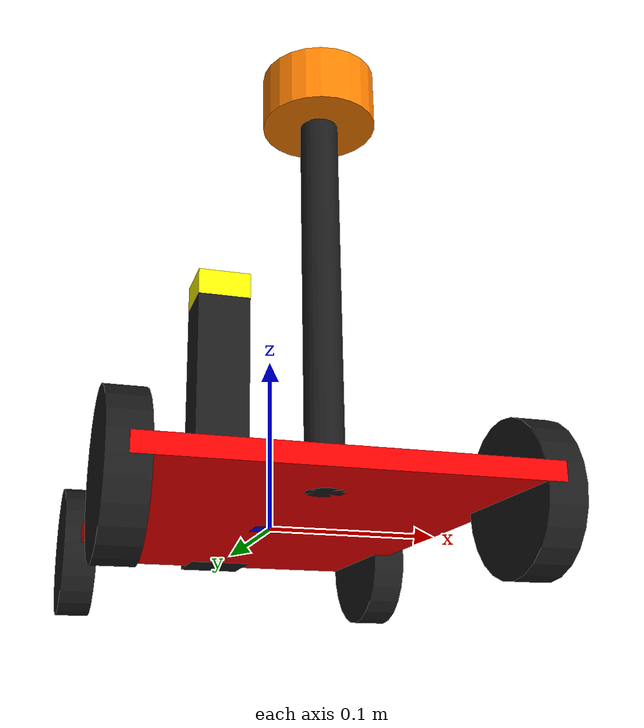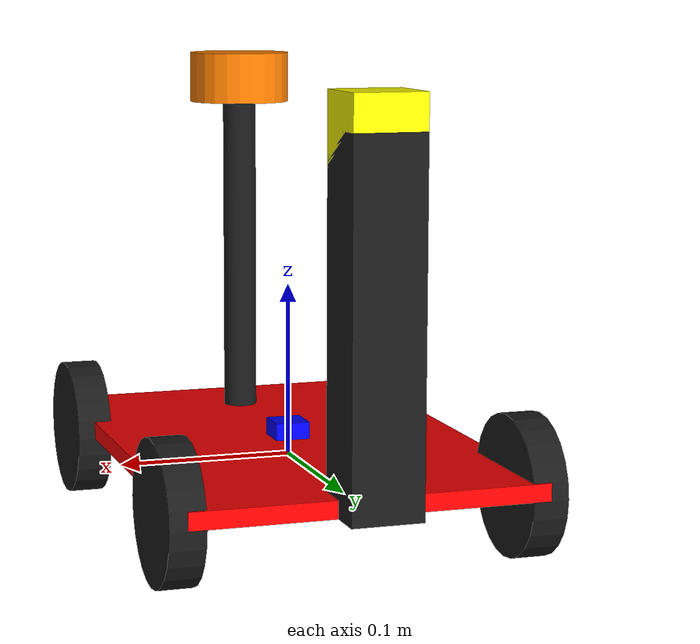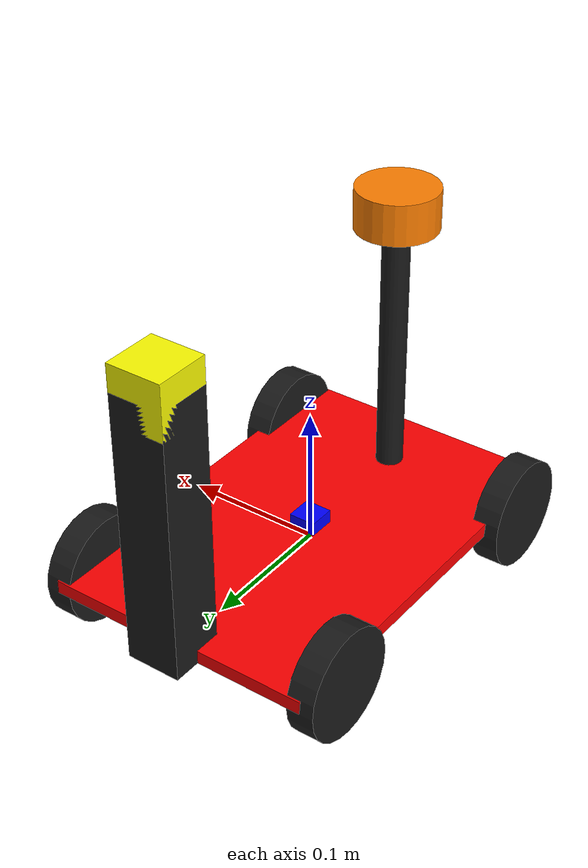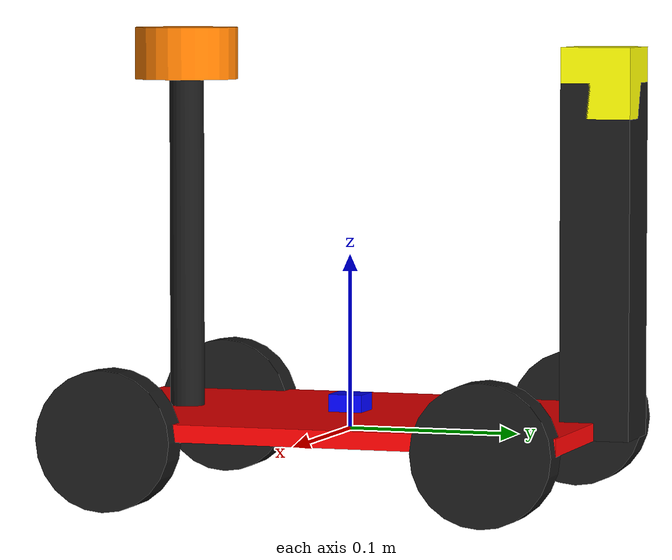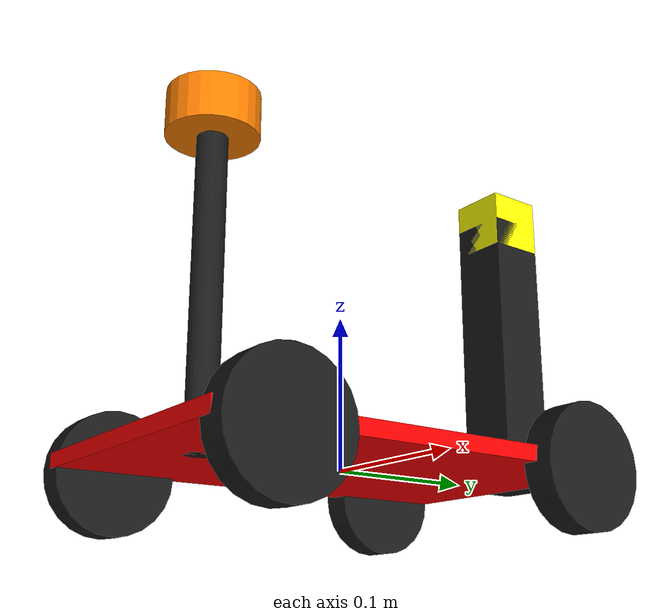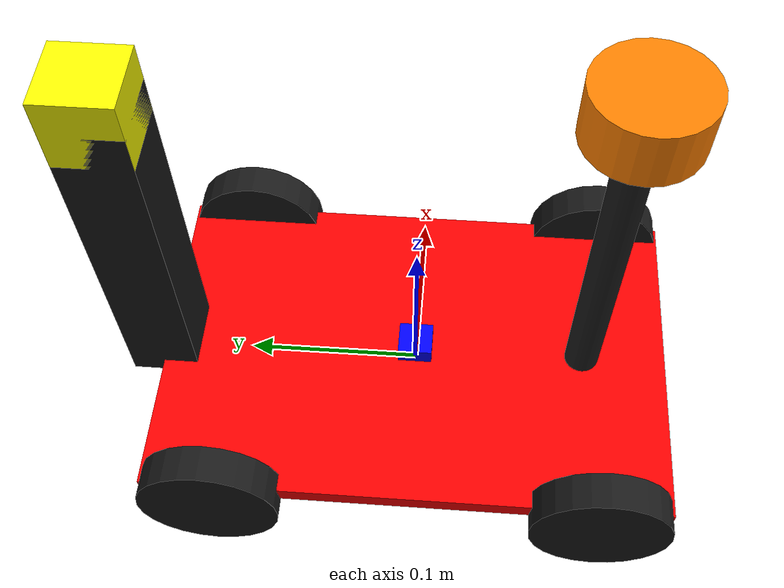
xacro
<?xml version="1.0"?>

<robot xmlns:xacro="http://www.ros.org/wiki/xacro" name="shakti">
	 <xacro:include filename="include.xacro" />

	 <link name="base_l">
		<visual>
			<origin xyz="0 0 0.005" rpy="0 0 0"/>
			<geometry>
				<box size="0.2 0.3 0.01"/>
			</geometry>
			<material name="red">
				<color rgba="1.0 0.0 0.0 1.0"/>
			</material>
		</visual>
		<collision>
			<origin xyz="0 0 0.005" rpy="0 0 0"/>
			<geometry>
				<box size="0.2 0.3 0.01"/>
			</geometry>
		</collision>
		<xacro:inertial_box mass="1.0" x="0.2" y="0.3" z="0.01">
            		<origin xyz="0 0 0.005" rpy="0 0 0"/>
        	</xacro:inertial_box>

	</link>

	<joint name="base_to_frontleft" type="continuous">
		<parent link="base_l"/>
		<child link="front_left_wheel"/>
		<origin xyz="-0.1 0.11 0" rpy="0 0 0"/>
		<axis xyz="1 0 0"/>
	</joint>

	<link name="front_left_wheel">
		<visual>
			<origin xyz="0 0 0" rpy="0 1.5708 0"/>
			<geometry>
				<cylinder radius="0.04" length="0.02"/>
			</geometry>
			<material name="black">
				<color rgba="0.1 0.1 0.1 1"/>
			</material>
		</visual>

		<collision>
			<origin xyz="0 0 0" rpy="0 1.5708 0"/>
			<geometry>
				<cylinder radius="0.04" length="0.02"/>
			</geometry>
		</collision>

		<xacro:inertial_cylinder mass="0.2" radius="0.04" length="0.02">
			<origin xyz="0 0 0" rpy="0 1.5708 0"/>
		</xacro:inertial_cylinder>
	</link>

	<joint name="base_to_frontright" type="continuous">
		<origin xyz="0.1 0.11 0" rpy="0 0 0" />
		<parent link="base_l"/>
		<child link="front_right_wheel" />
		<axis xyz="1 0 0"/>
	</joint>

	<link name="front_right_wheel">
		<visual>
			<origin xyz="0 0 0" rpy="0 1.5708 0"/>
			<geometry>
				<cylinder radius="0.04" length="0.02"/>
			</geometry>
			<material name="black">
				<color rgba="0.1 0.1 0.1 1"/>
			</material>
		</visual>

		<collision>
			<origin xyz="0 0 0" rpy="0 1.5708 0"/>
			<geometry>
				<cylinder radius="0.04" length="0.02"/>
			</geometry>
		</collision>

		<xacro:inertial_cylinder mass="0.2" radius="0.04" length="0.02">
			<origin xyz="0 0 0" rpy="0 1.5708 0"/>
		</xacro:inertial_cylinder>
	</link>

	<joint name="base_to_backleft" type="continuous">
			<origin xyz="-0.1 -0.11 0" rpy="0 0 0"/>
			<parent link="base_l"/>
			<child link="back_left_wheel"/>
			<axis xyz="1 0 0"/>
	</joint>

	<link name="back_left_wheel">
		<visual>
			<origin xyz="0 0 0" rpy="0 1.5708 0"/>
			<geometry>
				<cylinder radius="0.04" length="0.02"/>
			</geometry>
			<material name="black">
				<color rgba="0.1 0.1 0.1 1"/>
			</material>
		</visual>

		<collision>
			<origin xyz="0 0 0" rpy="0 1.5708 0"/>
			<geometry>
				<cylinder radius="0.04" length="0.02"/>
			</geometry>
		</collision>

		<xacro:inertial_cylinder mass="0.2" radius="0.04" length="0.02">
			<origin xyz="0 0 0" rpy="0 1.5708 0"/>
		</xacro:inertial_cylinder>
	</link>

	<joint name="base_to_backright" type="continuous">
		<origin xyz="0.1 -0.11 0" rpy="0 0 0" />
		<parent link="base_l"/>
		<child link="back_right_wheel" />
		<axis xyz="1 0 0"/>
	</joint>

	<link name="back_right_wheel">
		<visual>
			<origin xyz="0 0 0" rpy="0 1.5708 0"/>
			<geometry>
				<cylinder radius="0.04" length="0.02"/>
			</geometry>
			<material name="black">
				<color rgba="0.1 0.1 0.1 1"/>
			</material>
		</visual>

		<collision>
			<origin xyz="0 0 0" rpy="0 1.5708 0"/>
			<geometry>
				<cylinder radius="0.04" length="0.02"/>
			</geometry>
		</collision>

		<xacro:inertial_cylinder mass="0.2" radius="0.04" length="0.02">
			<origin xyz="0 0 0" rpy="0 1.5708 0"/>
		</xacro:inertial_cylinder>
	</link>

	<joint name="base_to_arm" type="revolute">
		<origin xyz="0 0.15 0" rpy="0 0 0"/>
		<parent link="base_l"/>
		<child link="arm"/>
		<axis xyz="1 0 0"/>
		<limit lower="-1.5708" upper="0" effort="10" velocity="1.0"/>
	</joint>

	<link name="arm">
		<visual>
			<origin xyz="0 0 0.1" rpy="0 0 0"/>
			<geometry>
				<box size="0.04 0.04 0.2"/>
			</geometry>
			<material name="black">
				<color rgba="0.1 0.1 0.1 1"/>
			</material>
		</visual>
		<collision>
			<origin xyz="0 0 0.1" rpy="0 0 0"/>
			<geometry>
				<box size="0.04 0.04 0.2"/>
			</geometry>
		</collision>
		<xacro:inertial_box mass="0.08" x="0.04" y="0.04" z="0.2">
            		<origin xyz="0 0 0.1" rpy="0 0 0"/>
        	</xacro:inertial_box>
        </link>

        <joint name="cam_joint" type="fixed">
        	<origin xyz="0 0 0.2" rpy="0 0 0"/>
        	<parent link="arm"/>
        	<child link="camera_link"/>
        </joint>

        <link name="camera_link">
        	<visual>
        		<origin xyz="0 0 0" rpy="0 0 0"/>
        		<geometry>
        			<box size="0.04 0.04 0.04"/>
        		</geometry>
        		<material name="yellow">
        			<color rgba="1 1 0 1"/>
        		</material>
        	</visual>

        	<collision>
        		<origin xyz="0 0 0" rpy="0 0 0"/>
        		<geometry>
        			<box size="0.04 0.04 0.04"/>
        		</geometry>
        	</collision>
        	<xacro:inertial_box mass="0.03" x="0.04" y="0.04" z="0.04">
            		<origin xyz="0 0 0" rpy="0 0 0"/>
        	</xacro:inertial_box>
        </link>

	<gazebo reference="camera_link">
    		<sensor name="camera_sensor" type="camera">

        		<update_rate>30</update_rate>
        		<topic>/camera/image_raw</topic>

        		<camera>

            			<horizontal_fov>1.047</horizontal_fov>

            			<image>
                			<width>1920</width>
                			<height>1080</height>
                			<format>R8G8B8</format>
            			</image>

            			<clip>
                			<near>0.1</near>
                			<far>100</far>
            			</clip>

            			<noise>
                			<type>gaussian</type>
                			<mean>0.0</mean>
                			<stddev>0.007</stddev>
            			</noise>
        		</camera>

        		<always_on>true</always_on>
        		<visualize>true</visualize>
    		</sensor>
	</gazebo>

	<gazebo>
		<plugin filename="libignition-gazebo6-diff-drive-system.so" name="ignition::gazebo::systems::DiffDrive">
			<left_joint>base_to_frontleft</left_joint>
			<left_joint>base_to_backleft</left_joint>
			<right_joint>base_to_frontright</right_joint>
		        <right_joint>base_to_backright</right_joint>
		        <odom_frame>odom</odom_frame>
    			<robot_base_frame>base_l</robot_base_frame>
			<wheel_separation>0.2</wheel_separation>
			<wheel_radius>0.04</wheel_radius>
			<odom_topic>/odom</odom_topic>
			<topic>/cmd_vel</topic>
			<odom_publish_frequency>10</odom_publish_frequency>
			<publish_odom>true</publish_odom>
			<tf_topic>/tf</tf_topic>
    			<publish_odom_tf>true</publish_odom_tf>
    			<publish_wheel_tf>true</publish_wheel_tf>
    			<frame_id>odom</frame_id>
    			<child_frame_id>base_l</child_frame_id>

		</plugin>
	</gazebo>

        <joint name="lidar_mast_joint" type="fixed">
        	<parent link="base_l"/>
        	<child link="lidar_mast"/>
        	<origin xyz="0.0 -0.1 0" rpy="0 0 0"/>
    	</joint>

    	<link name="lidar_mast">
        	<visual>
        		<origin xyz="0 0 0.1" rpy="0 0 0"/>
            		<geometry>
            			<cylinder radius="0.01" length="0.2"/>
            		</geometry>
            		<material name="black">
            			<color rgba="0.1 0.1 0.1 1.0"/>
            		</material>
        	</visual>
        	<collision>
        		<origin xyz="0 0 0.1" rpy="0 0 0"/>
            		<geometry>
            			<cylinder radius="0.01" length="0.2"/>
            		</geometry>
        	</collision>
        	<xacro:inertial_cylinder mass="0.05" radius="0.01" length="0.2">
            		<origin xyz="0 0 0.1" rpy="0 0 0"/>
        	</xacro:inertial_cylinder>
    	</link>

    	<joint name="laser_joint" type="fixed">
        	<parent link="lidar_mast"/>
        	<child link="laser_frame"/>
        	<origin xyz="0.0 0.0 0.2" rpy="0 0 0"/>
    	</joint>

    	<link name="laser_frame">
        	<visual>
        		<origin xyz="0 0 0.015" rpy="0 0 0"/>
            		<geometry>
            			<cylinder radius="0.03" length="0.03"/>
            		</geometry>
            		<material name="orange">
            			<color rgba="1.0 0.5 0.0 1.0"/>
            		</material>
        	</visual>
        	<collision>
        		<origin xyz="0 0 0.015" rpy="0 0 0"/>
            		<geometry>
            			<cylinder radius="0.03" length="0.03"/>
            		</geometry>
        	</collision>
        	<xacro:inertial_cylinder mass="0.1" radius="0.03" length="0.03">
            		<origin xyz="0 0 0.015" rpy="0 0 0"/>
        	</xacro:inertial_cylinder>
    	</link>

        <gazebo reference="laser_frame">
        	<sensor type="gpu_lidar" name="gpu_lidar">
        		<pose>0 0 0 0 0 0</pose>
        		<always_on>true</always_on>
        		<visualize>true</visualize>
        		<update_rate>10</update_rate>
        		<topic>scan</topic>
        		<ignition_frame_id>laser_frame</ignition_frame_id>
        		<ray>
        			<scan>
        				<horizontal>
        					<samples>720</samples>
        					<resolution>1</resolution>
        					<min_angle>-3.14</min_angle>
        					<max_angle>3.14</max_angle>
        				</horizontal>
        			</scan>
        			<range>
        				<min>0.1</min>
        				<max>30.0</max>
        				<resolution>0.01</resolution>
        			</range>
        		</ray>
        	</sensor>

    	</gazebo>

    	<joint name="imu_joint" type="fixed">
    		<parent link="base_l"/>
    		<child link="imu_link"/>
    		<origin xyz="0 0 0" rpy="0 0 0"/>
    	</joint>

    	<link name="imu_link">
    		<visual>
    			<origin xyz="0 0 0.01" rpy="0 0 0"/>
    			<geometry>
    				<box size="0.02 0.02 0.02"/>
    			</geometry>
    			<material name="blue">
    				<color rgba="0 0 1 1"/>
    			</material>
    		</visual>

    		<collision>
    			<origin xyz="0 0 0.01" rpy="0 0 0"/>
    			<geometry>
    				<box size="0.02 0.02 0.02"/>
    			</geometry>
    		</collision>

    		<xacro:inertial_box mass="0.01" x="0.02" y="0.02" z="0.02">
            		<origin xyz="0 0 0.01" rpy="0 0 0"/>
        	</xacro:inertial_box>
        </link>

        <gazebo reference="imu_link">
    		<sensor name="imu_sensor" type="imu">
        		<always_on>true</always_on>
        		<update_rate>50</update_rate>
        		<visualize>true</visualize>
			<topic>/imu</topic>
    			<ignition_frame_id>imu_link</ignition_frame_id>

        		<imu>
            			<angular_velocity>
                			<x>
                				<noise type="gaussian">
                    					<mean>0</mean>
                    					<stddev>0.01</stddev>
                				</noise>
                			</x>
                			<y>
                				<noise type="gaussian">
                    					<mean>0</mean>
                    					<stddev>0.01</stddev>
                				</noise>
                			</y>
                			<z>
                				<noise type="gaussian">
                    					<mean>0</mean>
                    					<stddev>0.01</stddev>
                				</noise>
                			</z>
            			</angular_velocity>

            			<linear_acceleration>
		        		<x>
                				<noise type="gaussian">
                    					<mean>0</mean>
                    					<stddev>0.01</stddev>
                				</noise>
                			</x>
                			<y>
                				<noise type="gaussian">
                    					<mean>0</mean>
                    					<stddev>0.01</stddev>
                				</noise>
                			</y>
                			<z>
                				<noise type="gaussian">
                    					<mean>0</mean>
                    					<stddev>0.01</stddev>
                				</noise>
                			</z>
            			</linear_acceleration>
        		</imu>
    		</sensor>
	</gazebo>

	<ros2_control name="IgnitionSystem" type="system">
	  <hardware>
	    <plugin>ign_ros2_control/IgnitionSystem</plugin>
	  </hardware>
	  <joint name="base_to_arm">
	    <command_interface name="position"/>
	    <state_interface name="position"/>
	    <state_interface name="velocity"/>
	  </joint>
	</ros2_control>
	<gazebo>

	  <plugin filename="libign_ros2_control-system.so"
		  name="ign_ros2_control::IgnitionROS2ControlPlugin">
	    <parameters>/home/safiya/ros2_ws/src/rover/config/controllers.yaml</parameters>
	  </plugin>
	</gazebo>

	<gazebo>
	  <plugin
	    filename="libignition-gazebo-joint-state-publisher-system.so"
	    name="ignition::gazebo::systems::JointStatePublisher">
	    	<topic>joint_states</topic>
	    	<joint_name>base_to_frontleft</joint_name>
	    	<joint_name>base_to_frontright</joint_name>
	    	<joint_name>base_to_backleft</joint_name>
	    	<joint_name>base_to_backright</joint_name>
	    </plugin>
	</gazebo>

</robot>

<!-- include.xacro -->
<robot xmlns:xacro="http://www.ros.org/wiki/xacro">

	 <xacro:macro name="inertial_box" params="mass x y z *origin">
        <inertial>
            <xacro:insert_block name="origin"/>
            <mass value="${mass}" />
            <inertia ixx="${(1/12) * mass * (y*y+z*z)}" ixy="0.0" ixz="0.0"
                    iyy="${(1/12) * mass * (x*x+z*z)}" iyz="0.0"
                    izz="${(1/12) * mass * (x*x+y*y)}" />
        </inertial>
    </xacro:macro>

    <xacro:macro name="inertial_cylinder" params="mass length radius *origin">
        <inertial>
            <xacro:insert_block name="origin"/>
            <mass value="${mass}" />
            <inertia ixx="${(1/12)*mass*(3*radius*radius+ length*length)}" ixy="0.0" ixz="0.0"
            iyy="${(1/2) * mass * (radius*radius)}" iyz="0.0"  izz="${(1/12) * mass * (3*radius*radius + length*length)}"/>
        </inertial>
    </xacro:macro>

 </robot>
